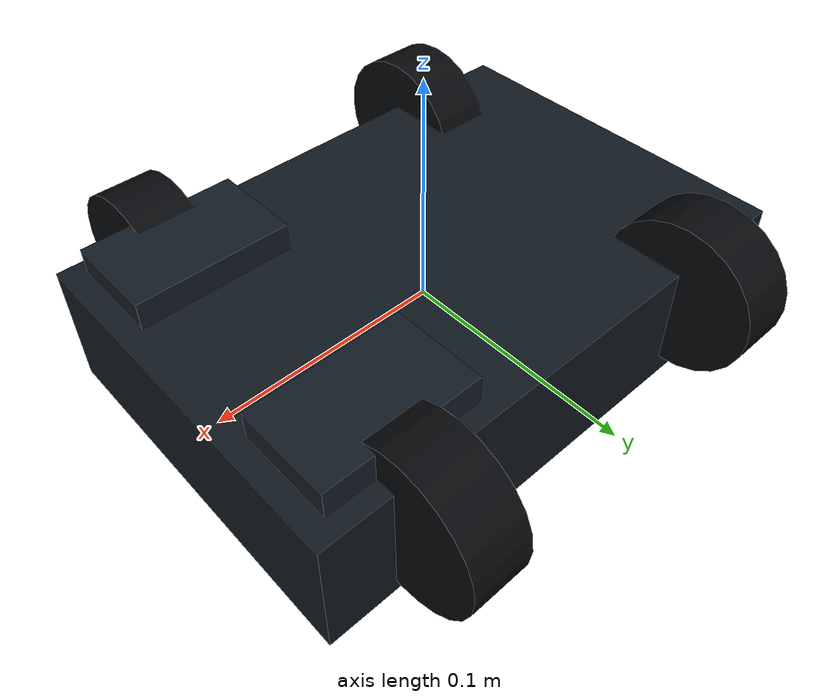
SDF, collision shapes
<?xml version="1.0"?>
<sdf version="1.9">
  <model name="wheeltec_robot">
    <static>false</static>
    <self_collide>false</self_collide>
    <allow_auto_disable>false</allow_auto_disable>

    <link name="base_link">
      <inertial>
        <mass>0.6841</mass>
        <inertia>
          <ixx>0.00118</ixx><ixy>0.000002</ixy><ixz>-0.000001</ixz>
          <iyy>0.00390</iyy><iyz>-0.000002</iyz><izz>0.00387</izz>
        </inertia>
      </inertial>
      <collision name="base_collision">
        <geometry><box><size>0.23 0.16 0.055</size></box></geometry>
      </collision>
      <visual name="base_visual">
        <geometry><mesh><uri>model://wheeltec_robot/meshes/base_link.STL</uri></mesh></geometry>
        <material><ambient>0.025 0.040 0.055 1</ambient><diffuse>0.065 0.095 0.125 1</diffuse><specular>0.55 0.70 0.78 1</specular><shininess>75</shininess></material>
      </visual>
      <visual name="front_visual">
        <pose>0.14383 -0.000013 0.01 0 0 0</pose>
        <geometry><mesh><uri>model://wheeltec_robot/meshes/front_link.STL</uri></mesh></geometry>
        <material><ambient>0.48 0.055 0.012 1</ambient><diffuse>0.82 0.16 0.025 1</diffuse><specular>0.80 0.38 0.12 1</specular><shininess>55</shininess></material>
      </visual>
      <visual name="controller_visual">
        <pose>-0.000357 -0.04684 0.0515 0 0 0</pose>
        <geometry><mesh><uri>model://wheeltec_robot/meshes/controller_link.STL</uri></mesh></geometry>
        <material><ambient>0.035 0.050 0.065 1</ambient><diffuse>0.10 0.14 0.18 1</diffuse><specular>0.50 0.68 0.78 1</specular><shininess>70</shininess></material>
      </visual>
      <visual name="camera_visual">
        <pose>0.11365 0.000165 0.0762 0 0 0</pose>
        <geometry><mesh><uri>model://wheeltec_robot/meshes/camera_link.STL</uri></mesh></geometry>
        <material><ambient>0.46 0.50 0.56 1</ambient><diffuse>0.68 0.73 0.80 1</diffuse><specular>0.98 0.98 1.00 1</specular><shininess>100</shininess></material>
      </visual>
      <visual name="camera_lens">
        <pose>0.143 0.000165 0.0762 0 1.5708 0</pose>
        <geometry><cylinder><radius>0.014</radius><length>0.012</length></cylinder></geometry>
        <material><ambient>0.005 0.008 0.012 1</ambient><diffuse>0.015 0.025 0.035 1</diffuse><specular>0.35 0.50 0.62 1</specular><shininess>90</shininess></material>
      </visual>
      <visual name="camera_status_ring">
        <pose>0.150 0.000165 0.0762 0 1.5708 0</pose>
        <geometry><cylinder><radius>0.018</radius><length>0.004</length></cylinder></geometry>
        <material><ambient>0.00 0.16 0.22 1</ambient><diffuse>0.00 0.42 0.60 1</diffuse><emissive>0.00 0.18 0.28 1</emissive></material>
      </visual>
    </link>

    <link name="lb_link">
      <pose>-0.069657 0.07975 0.0162 0 0 0</pose>
      <inertial><mass>0.0457</mass><inertia><ixx>0.000018</ixx><iyy>0.000031</iyy><izz>0.000018</izz></inertia></inertial>
      <collision name="lb_collision"><pose>0 0 0 0 1.5708 0</pose><geometry><cylinder><radius>0.033</radius><length>0.025</length></cylinder></geometry></collision>
      <visual name="lb_visual"><geometry><mesh><uri>model://wheeltec_robot/meshes/lb_link.STL</uri></mesh></geometry><material><ambient>0.012 0.015 0.020 1</ambient><diffuse>0.025 0.032 0.042 1</diffuse><specular>0.12 0.16 0.20 1</specular><shininess>35</shininess></material></visual>
      <visual name="lb_hub"><pose>0 0 0 0 1.5708 0</pose><geometry><cylinder><radius>0.012</radius><length>0.028</length></cylinder></geometry><material><ambient>0.28 0.32 0.36 1</ambient><diffuse>0.52 0.58 0.64 1</diffuse><specular>0.90 0.95 1.00 1</specular><shininess>90</shininess></material></visual>
    </link>
    <link name="rb_link">
      <pose>-0.069657 -0.079776 0.0162 0 0 0</pose>
      <inertial><mass>0.0457</mass><inertia><ixx>0.000018</ixx><iyy>0.000031</iyy><izz>0.000018</izz></inertia></inertial>
      <collision name="rb_collision"><pose>0 0 0 0 1.5708 0</pose><geometry><cylinder><radius>0.033</radius><length>0.025</length></cylinder></geometry></collision>
      <visual name="rb_visual"><geometry><mesh><uri>model://wheeltec_robot/meshes/rb_link.STL</uri></mesh></geometry><material><ambient>0.012 0.015 0.020 1</ambient><diffuse>0.025 0.032 0.042 1</diffuse><specular>0.12 0.16 0.20 1</specular><shininess>35</shininess></material></visual>
      <visual name="rb_hub"><pose>0 0 0 0 1.5708 0</pose><geometry><cylinder><radius>0.012</radius><length>0.028</length></cylinder></geometry><material><ambient>0.28 0.32 0.36 1</ambient><diffuse>0.52 0.58 0.64 1</diffuse><specular>0.90 0.95 1.00 1</specular><shininess>90</shininess></material></visual>
    </link>
    <joint name="lb_joint" type="revolute"><parent>base_link</parent><child>lb_link</child><axis><xyz>0 -1 0</xyz><limit><lower>-1e16</lower><upper>1e16</upper></limit></axis></joint>
    <joint name="rb_joint" type="revolute"><parent>base_link</parent><child>rb_link</child><axis><xyz>0 -1 0</xyz><limit><lower>-1e16</lower><upper>1e16</upper></limit></axis></joint>

    <link name="left_link">
      <pose>0.073593 0.051987 0.022 0 0 0</pose>
      <collision name="left_collision"><geometry><box><size>0.065 0.04 0.035</size></box></geometry></collision>
      <visual name="left_visual"><geometry><mesh><uri>model://wheeltec_robot/meshes/left_link.STL</uri></mesh></geometry><material><ambient>0.025 0.040 0.055 1</ambient><diffuse>0.075 0.11 0.145 1</diffuse><specular>0.55 0.70 0.78 1</specular><shininess>70</shininess></material></visual>
    </link>
    <link name="right_link">
      <pose>0.073593 -0.052013 0.022 0 0 0</pose>
      <collision name="right_collision"><geometry><box><size>0.065 0.04 0.035</size></box></geometry></collision>
      <visual name="right_visual"><geometry><mesh><uri>model://wheeltec_robot/meshes/right_link.STL</uri></mesh></geometry><material><ambient>0.025 0.040 0.055 1</ambient><diffuse>0.075 0.11 0.145 1</diffuse><specular>0.55 0.70 0.78 1</specular><shininess>70</shininess></material></visual>
    </link>
    <link name="lf_link">
      <pose>0.073593 0.082113 0.011 0 0 0</pose>
      <collision name="lf_collision"><pose>0 0 0 0 1.5708 0</pose><geometry><cylinder><radius>0.033</radius><length>0.025</length></cylinder></geometry></collision>
      <visual name="lf_visual"><geometry><mesh><uri>model://wheeltec_robot/meshes/lf_link.STL</uri></mesh></geometry><material><ambient>0.012 0.015 0.020 1</ambient><diffuse>0.025 0.032 0.042 1</diffuse><specular>0.12 0.16 0.20 1</specular><shininess>35</shininess></material></visual>
      <visual name="lf_hub"><pose>0 0 0 0 1.5708 0</pose><geometry><cylinder><radius>0.012</radius><length>0.028</length></cylinder></geometry><material><ambient>0.28 0.32 0.36 1</ambient><diffuse>0.52 0.58 0.64 1</diffuse><specular>0.90 0.95 1.00 1</specular><shininess>90</shininess></material></visual>
    </link>
    <link name="rf_link">
      <pose>0.073593 -0.082139 0.011 0 0 0</pose>
      <collision name="rf_collision"><pose>0 0 0 0 1.5708 0</pose><geometry><cylinder><radius>0.033</radius><length>0.025</length></cylinder></geometry></collision>
      <visual name="rf_visual"><geometry><mesh><uri>model://wheeltec_robot/meshes/rf_link.STL</uri></mesh></geometry><material><ambient>0.012 0.015 0.020 1</ambient><diffuse>0.025 0.032 0.042 1</diffuse><specular>0.12 0.16 0.20 1</specular><shininess>35</shininess></material></visual>
      <visual name="rf_hub"><pose>0 0 0 0 1.5708 0</pose><geometry><cylinder><radius>0.012</radius><length>0.028</length></cylinder></geometry><material><ambient>0.28 0.32 0.36 1</ambient><diffuse>0.52 0.58 0.64 1</diffuse><specular>0.90 0.95 1.00 1</specular><shininess>90</shininess></material></visual>
    </link>
    <joint name="left_joint" type="fixed"><parent>base_link</parent><child>left_link</child></joint>
    <joint name="right_joint" type="fixed"><parent>base_link</parent><child>right_link</child></joint>
    <joint name="lf_point" type="fixed"><parent>base_link</parent><child>lf_link</child></joint>
    <joint name="rf_point" type="fixed"><parent>base_link</parent><child>rf_link</child></joint>

    <link name="laser_link">
      <pose>0.051343 -0.000013 0.094524 0 0 3.1416</pose>
      <visual name="laser_visual"><geometry><mesh><uri>model://wheeltec_robot/meshes/laser.STL</uri></mesh></geometry><material><ambient>0.16 0.19 0.22 1</ambient><diffuse>0.32 0.38 0.44 1</diffuse><specular>0.92 0.96 1.00 1</specular><shininess>95</shininess></material></visual>
      <sensor name="laser" type="gpu_lidar">
        <always_on>true</always_on><update_rate>8</update_rate><topic>/scan</topic><gz_frame_id>laser_link</gz_frame_id><visualize>true</visualize>
        <ray><scan><horizontal><samples>240</samples><resolution>1</resolution><min_angle>-3.14159</min_angle><max_angle>3.14159</max_angle></horizontal></scan><range><min>0.03</min><max>8.0</max><resolution>0.01</resolution></range><noise><type>gaussian</type><mean>0</mean><stddev>0.002</stddev></noise></ray>
      </sensor>
    </link>
    <joint name="laser_joint" type="fixed"><parent>base_link</parent><child>laser_link</child></joint>

    <link name="camera_link">
      <pose>0.11365 0.000165 0.076204 0 0 0</pose>
      <sensor name="front_camera" type="camera">
        <always_on>true</always_on><update_rate>4</update_rate><topic>/camera/image_raw</topic><gz_frame_id>camera_link</gz_frame_id><visualize>true</visualize>
        <camera name="front_camera"><horizontal_fov>1.0472</horizontal_fov><image><width>320</width><height>180</height><format>R8G8B8</format></image><clip><near>0.01</near><far>12.0</far></clip></camera>
      </sensor>
    </link>
    <joint name="camera_joint" type="fixed"><parent>base_link</parent><child>camera_link</child></joint>

    <plugin filename="gz-sim-diff-drive-system" name="gz::sim::systems::DiffDrive">
      <left_joint>lb_joint</left_joint><right_joint>rb_joint</right_joint>
      <wheel_separation>0.1595</wheel_separation><wheel_radius>0.033</wheel_radius>
      <topic>/cmd_vel</topic><odom_topic>/odom</odom_topic><tf_topic>/tf</tf_topic>
      <frame_id>odom</frame_id><child_frame_id>base_link</child_frame_id><odom_publish_frequency>30</odom_publish_frequency>
      <max_linear_acceleration>0.35</max_linear_acceleration><min_linear_acceleration>-0.35</min_linear_acceleration>
      <max_angular_acceleration>1.5</max_angular_acceleration><min_angular_acceleration>-1.5</min_angular_acceleration>
      <max_linear_velocity>0.22</max_linear_velocity><min_linear_velocity>-0.22</min_linear_velocity>
      <max_angular_velocity>1.2</max_angular_velocity><min_angular_velocity>-1.2</min_angular_velocity>
    </plugin>
  </model>
</sdf>
